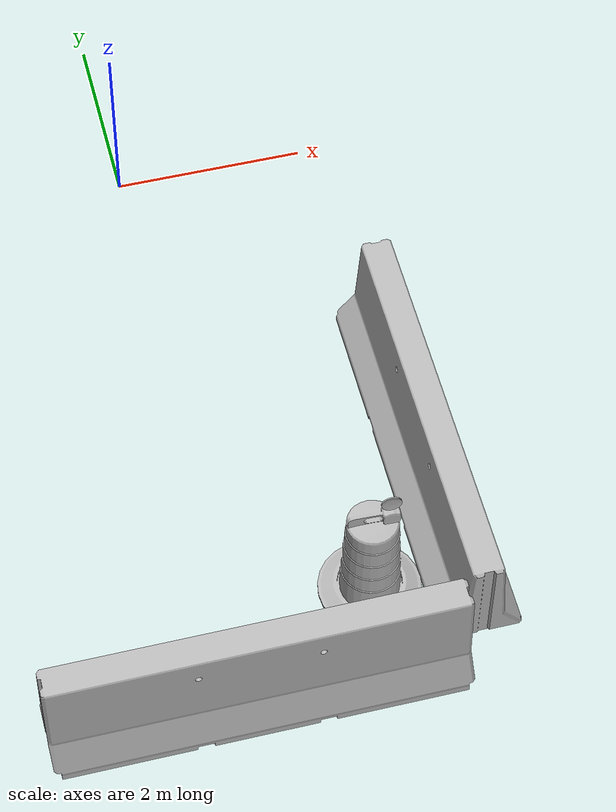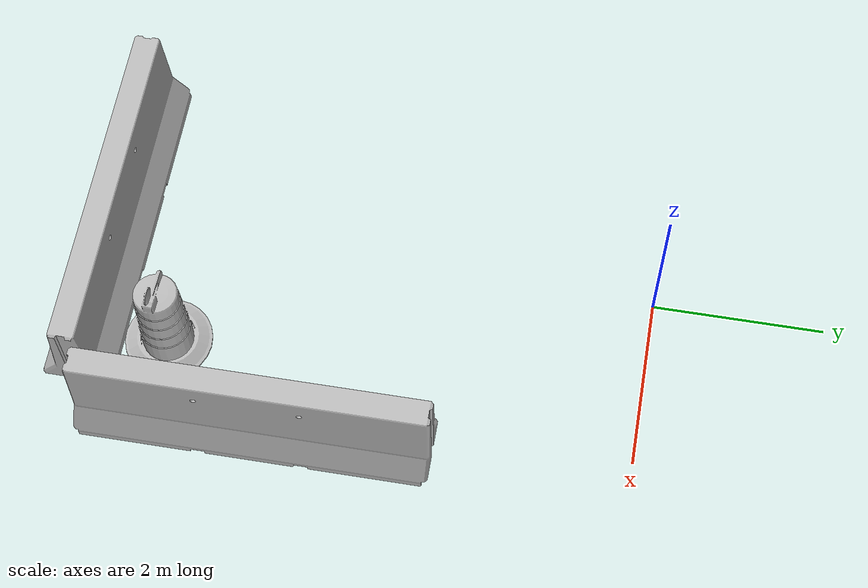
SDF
<sdf version="1.4">
 <world name="default">
  <model name="jersey_barrier_0">
   <static>1</static>
   <link name="link">
    <visual name="visual">
     <geometry><mesh><uri>model://jersey_barrier/meshes/jersey_barrier.dae</uri></mesh></geometry>
    </visual>
    <collision name="upright">
     <pose>0 0 0.5715 0 -0 0</pose>
     <geometry><box><size>4.06542 0.3063 1.143</size></box></geometry>
    </collision>
    <collision name="base">
     <pose>0 0 0.032258 0 -0 0</pose>
     <geometry><box><size>4.06542 0.8107 0.064516</size></box></geometry>
    </collision>
    <collision name="base2">
     <pose>0 0 0.1 0 -0 0</pose>
     <geometry><box><size>4.06542 0.65 0.1</size></box></geometry>
    </collision>
    <collision name="base3">
     <pose>0 0 0.2 0 -0 0</pose>
     <geometry><box><size>4.06542 0.5 0.1</size></box></geometry>
    </collision>
    <collision name="left-angle">
     <pose>0 -0.224 0.2401 0.9 -0 0</pose>
     <geometry><box><size>4.06542 0.5 0.064516</size></box></geometry>
    </collision>
    <collision name="right-angle">
     <pose>0 0.224 0.2401 -0.9 0 0</pose>
     <geometry><box><size>4.06542 0.5 0.064516</size></box></geometry>
    </collision>
    <velocity_decay><linear>0</linear><angular>0</angular></velocity_decay>
   </link>
   <pose>0 -6.43482 0 0 -0 0</pose>
  </model>
  <model name="jersey_barrier_2">
   <static>1</static>
   <link name="link">
    <visual name="visual">
     <geometry><mesh><uri>model://jersey_barrier/meshes/jersey_barrier.dae</uri></mesh></geometry>
    </visual>
    <collision name="upright">
     <pose>0 0 0.5715 0 -0 0</pose>
     <geometry><box><size>4.06542 0.3063 1.143</size></box></geometry>
    </collision>
    <collision name="base">
     <pose>0 0 0.032258 0 -0 0</pose>
     <geometry><box><size>4.06542 0.8107 0.064516</size></box></geometry>
    </collision>
    <collision name="base2">
     <pose>0 0 0.1 0 -0 0</pose>
     <geometry><box><size>4.06542 0.65 0.1</size></box></geometry>
    </collision>
    <collision name="base3">
     <pose>0 0 0.2 0 -0 0</pose>
     <geometry><box><size>4.06542 0.5 0.1</size></box></geometry>
    </collision>
    <collision name="left-angle">
     <pose>0 -0.224 0.2401 0.9 -0 0</pose>
     <geometry><box><size>4.06542 0.5 0.064516</size></box></geometry>
    </collision>
    <collision name="right-angle">
     <pose>0 0.224 0.2401 -0.9 0 0</pose>
     <geometry><box><size>4.06542 0.5 0.064516</size></box></geometry>
    </collision>
    <velocity_decay><linear>0</linear><angular>0</angular></velocity_decay>
   </link>
   <pose>2.25235 -4.27805 0 0 -0 1.57345</pose>
  </model>
  <model name="Construction Barrel_0">
   <link name="link">
    <inertial>
     <pose>0 0 0.4 0 -0 0</pose>
     <mass>500</mass>
     <inertia><ixx>51.2096</ixx><iyy>51.2096</iyy><izz>25</izz><ixy>0</ixy><ixz>0</ixz><iyz>0</iyz></inertia>
    </inertial>
    <collision name="collision">
     <geometry><mesh><uri>model://construction_barrel/meshes/construction_barrel.dae</uri></mesh></geometry>
    </collision>
    <visual name="visual">
     <geometry><mesh><uri>model://construction_barrel/meshes/construction_barrel.dae</uri></mesh></geometry>
    </visual>
    <velocity_decay><linear>0</linear><angular>0</angular></velocity_decay>
   </link>
   <pose>1.34036 -5.51637 -0.000169 0.000503 0.000208 -0.036709</pose>
   <static>0</static>
  </model>
 </world>
</sdf>
